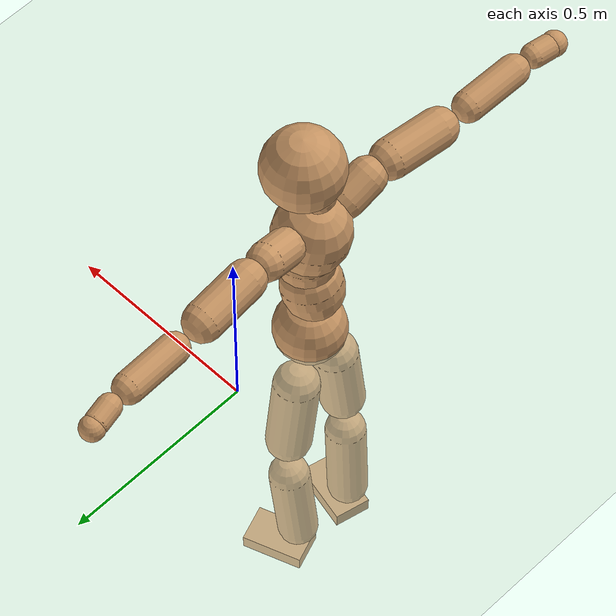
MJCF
<mujoco model="humanoid">
  <compiler coordinate="local" angle="radian"/>
  <default>
    <joint damping="0.0" armature="0.01" stiffness="0.0" limited="true"/>
    <geom conaffinity="1" condim="3" contype="7" margin="0.001" rgba="0.8 0.6 .4 1"/>
  </default>
  <asset>
    <texture type="skybox" builtin="gradient" rgb1=".4 .5 .6" rgb2="0 0 0" width="100" height="100"/>
    <texture builtin="flat" height="1278" mark="cross" markrgb="1 1 1" name="texgeom" random="0.01" rgb1="0.8 0.6 0.4" rgb2="0.8 0.6 0.4" type="cube" width="127"/>
    <texture builtin="checker" height="100" name="texplane" rgb1="0 0 0" rgb2="0.8 0.8 0.8" type="2d" width="100"/>
    <material name="MatPlane" reflectance="0.5" shininess="1" specular="1" texrepeat="60 60" texture="texplane"/>
    <material name="geom" texture="texgeom" texuniform="true"/>
  </asset>
  <worldbody>
    <light cutoff="100" diffuse="1 1 1" dir="-0 0 -1.3" directional="true" exponent="1" pos="0 0 1.3" specular=".1 .1 .1"/>
    <geom conaffinity="1" condim="3" name="floor" pos="0 0 0" rgba="0.8 0.9 0.8 1" size="100 100 .2" type="plane" material="MatPlane"/>
    <body name="Pelvis" pos="0.0006 -0.2386 0.0166">
      <freejoint name="Pelvis"/>
      <geom type="sphere" contype="1" conaffinity="1" density="500" size="0.0907" pos="0.0000 0.0000 0.0000" name="Pelvis"/>
      <body name="L_Hip" pos="-0.0203 0.0557 -0.0802">
        <joint name="L_Hip_x" type="hinge" pos="0 0 0" axis="1 0 0" stiffness="800" damping="80" armature="0.02" range="-180.0000 180.0000"/>
        <joint name="L_Hip_y" type="hinge" pos="0 0 0" axis="0 1 0" stiffness="800" damping="80" armature="0.02" range="-180.0000 180.0000"/>
        <joint name="L_Hip_z" type="hinge" pos="0 0 0" axis="0 0 1" stiffness="800" damping="80" armature="0.02" range="-180.0000 180.0000"/>
        <geom type="capsule" contype="1" conaffinity="1" density="500" fromto="0.0012 0.0083 -0.0731 0.0048 0.0330 -0.2925" size="0.0575" name="L_Hip"/>
        <body name="L_Knee" pos="0.006 0.0413 -0.3656">
          <joint name="L_Knee_x" type="hinge" pos="0 0 0" axis="1 0 0" stiffness="800" damping="80" armature="0.02" range="-180.0000 180.0000"/>
          <joint name="L_Knee_y" type="hinge" pos="0 0 0" axis="0 1 0" stiffness="800" damping="80" armature="0.02" range="-180.0000 180.0000"/>
          <joint name="L_Knee_z" type="hinge" pos="0 0 0" axis="0 0 1" stiffness="800" damping="80" armature="0.02" range="-180.0000 180.0000"/>
          <geom type="capsule" contype="1" conaffinity="1" density="500" fromto="-0.0071 -0.0025 -0.0764 -0.0285 -0.0099 -0.3056" size="0.0514" name="L_Knee"/>
          <body name="L_Ankle" pos="-0.0357 -0.0124 -0.382">
            <joint name="L_Ankle_x" type="hinge" pos="0 0 0" axis="1 0 0" stiffness="800" damping="80" armature="0.02" range="-180.0000 180.0000"/>
            <joint name="L_Ankle_y" type="hinge" pos="0 0 0" axis="0 1 0" stiffness="800" damping="80" armature="0.02" range="-180.0000 180.0000"/>
            <joint name="L_Ankle_z" type="hinge" pos="0 0 0" axis="0 0 1" stiffness="800" damping="80" armature="0.02" range="-180.0000 180.0000"/>
            <geom type="box" contype="1" conaffinity="1" density="500" pos="0.0559 0.0199 -0.0274" size="0.0788 0.0488 0.0203" quat="0.9854 0.0000 0.0000 0.1703" name="L_Ankle"/>
            <body name="L_Toe" pos="0.1118 0.0398 -0.0549">
              <joint name="L_Toe_x" type="hinge" pos="0 0 0" axis="1 0 0" stiffness="500" damping="50" armature="0.02" range="-180.0000 180.0000"/>
              <joint name="L_Toe_y" type="hinge" pos="0 0 0" axis="0 1 0" stiffness="500" damping="50" armature="0.02" range="-180.0000 180.0000"/>
              <joint name="L_Toe_z" type="hinge" pos="0 0 0" axis="0 0 1" stiffness="500" damping="50" armature="0.02" range="-180.0000 180.0000"/>
              <geom type="box" contype="1" conaffinity="1" density="500" pos="0.0000 0.0000 0.0277" size="0.001 0.0023 0.001" quat="0.9845 0.0000 0.0000 0.1752" name="L_Toe"/>
            </body>
          </body>
        </body>
      </body>
      <body name="R_Hip" pos="-0.0169 -0.058 -0.0881">
        <joint name="R_Hip_x" type="hinge" pos="0 0 0" axis="1 0 0" stiffness="800" damping="80" armature="0.02" range="-180.0000 180.0000"/>
        <joint name="R_Hip_y" type="hinge" pos="0 0 0" axis="0 1 0" stiffness="800" damping="80" armature="0.02" range="-180.0000 180.0000"/>
        <joint name="R_Hip_z" type="hinge" pos="0 0 0" axis="0 0 1" stiffness="800" damping="80" armature="0.02" range="-180.0000 180.0000"/>
        <geom type="capsule" contype="1" conaffinity="1" density="500" fromto="-0.0008 -0.0084 -0.0721 -0.0034 -0.0334 -0.2884" size="0.0572" name="R_Hip"/>
        <body name="R_Knee" pos="-0.0042 -0.0418 -0.3605">
          <joint name="R_Knee_x" type="hinge" pos="0 0 0" axis="1 0 0" stiffness="800" damping="80" armature="0.02" range="-180.0000 180.0000"/>
          <joint name="R_Knee_y" type="hinge" pos="0 0 0" axis="0 1 0" stiffness="800" damping="80" armature="0.02" range="-180.0000 180.0000"/>
          <joint name="R_Knee_z" type="hinge" pos="0 0 0" axis="0 0 1" stiffness="800" damping="80" armature="0.02" range="-180.0000 180.0000"/>
          <geom type="capsule" contype="1" conaffinity="1" density="500" fromto="-0.0065 0.0034 -0.0752 -0.0262 0.0136 -0.3009" size="0.052" name="R_Knee"/>
          <body name="R_Ankle" pos="-0.0327 0.0171 -0.3761">
            <joint name="R_Ankle_x" type="hinge" pos="0 0 0" axis="1 0 0" stiffness="800" damping="80" armature="0.02" range="-180.0000 180.0000"/>
            <joint name="R_Ankle_y" type="hinge" pos="0 0 0" axis="0 1 0" stiffness="800" damping="80" armature="0.02" range="-180.0000 180.0000"/>
            <joint name="R_Ankle_z" type="hinge" pos="0 0 0" axis="0 0 1" stiffness="800" damping="80" armature="0.02" range="-180.0000 180.0000"/>
            <geom type="box" contype="1" conaffinity="1" density="500" pos="0.0597 -0.0141 -0.0289" size="0.0831 0.0478 0.0207" quat="0.9933 0.0000 0.0000 -0.1156" name="R_Ankle"/>
            <body name="R_Toe" pos="0.1195 -0.0282 -0.0578">
              <joint name="R_Toe_x" type="hinge" pos="0 0 0" axis="1 0 0" stiffness="500" damping="50" armature="0.02" range="-180.0000 180.0000"/>
              <joint name="R_Toe_y" type="hinge" pos="0 0 0" axis="0 1 0" stiffness="500" damping="50" armature="0.02" range="-180.0000 180.0000"/>
              <joint name="R_Toe_z" type="hinge" pos="0 0 0" axis="0 0 1" stiffness="500" damping="50" armature="0.02" range="-180.0000 180.0000"/>
              <geom type="box" contype="1" conaffinity="1" density="500" pos="0.0000 0.0000 0.0302" size="0.001 0.0023 0.0011" quat="0.9944 0.0000 0.0000 -0.1060" name="R_Toe"/>
            </body>
          </body>
        </body>
      </body>
      <body name="Torso" pos="-0.0286 0.0038 0.1207">
        <joint name="Torso_x" type="hinge" pos="0 0 0" axis="1 0 0" stiffness="1000" damping="100" armature="0.02" range="-180.0000 180.0000"/>
        <joint name="Torso_y" type="hinge" pos="0 0 0" axis="0 1 0" stiffness="1000" damping="100" armature="0.02" range="-180.0000 180.0000"/>
        <joint name="Torso_z" type="hinge" pos="0 0 0" axis="0 0 1" stiffness="1000" damping="100" armature="0.02" range="-180.0000 180.0000"/>
        <geom type="capsule" contype="1" conaffinity="1" density="500" fromto="0.0188 0.0027 0.0828 0.0126 0.0018 0.0552" size="0.0754" name="Torso"/>
        <body name="Spine" pos="0.0314 0.0045 0.138">
          <joint name="Spine_x" type="hinge" pos="0 0 0" axis="1 0 0" stiffness="1000" damping="100" armature="0.02" range="-180.0000 180.0000"/>
          <joint name="Spine_y" type="hinge" pos="0 0 0" axis="0 1 0" stiffness="1000" damping="100" armature="0.02" range="-180.0000 180.0000"/>
          <joint name="Spine_z" type="hinge" pos="0 0 0" axis="0 0 1" stiffness="1000" damping="100" armature="0.02" range="-180.0000 180.0000"/>
          <geom type="capsule" contype="1" conaffinity="1" density="500" fromto="0.0020 -0.0015 0.0332 0.0013 -0.0010 0.0221" size="0.0735" name="Spine"/>
          <body name="Chest" pos="0.0034 -0.0026 0.0553">
            <joint name="Chest_x" type="hinge" pos="0 0 0" axis="1 0 0" stiffness="1000" damping="100" armature="0.02" range="-180.0000 180.0000"/>
            <joint name="Chest_y" type="hinge" pos="0 0 0" axis="0 1 0" stiffness="1000" damping="100" armature="0.02" range="-180.0000 180.0000"/>
            <joint name="Chest_z" type="hinge" pos="0 0 0" axis="0 0 1" stiffness="1000" damping="100" armature="0.02" range="-180.0000 180.0000"/>
            <geom type="capsule" contype="1" conaffinity="1" density="500" fromto="-0.0158 -0.0053 0.0818 -0.0105 -0.0035 0.0545" size="0.0934" name="Chest"/>
            <body name="Neck" pos="-0.0354 -0.0129 0.1976">
              <joint name="Neck_x" type="hinge" pos="0 0 0" axis="1 0 0" stiffness="500" damping="50" armature="0.02" range="-180.0000 180.0000"/>
              <joint name="Neck_y" type="hinge" pos="0 0 0" axis="0 1 0" stiffness="500" damping="50" armature="0.02" range="-180.0000 180.0000"/>
              <joint name="Neck_z" type="hinge" pos="0 0 0" axis="0 0 1" stiffness="500" damping="50" armature="0.02" range="-180.0000 180.0000"/>
              <geom type="capsule" contype="1" conaffinity="1" density="500" fromto="0.0096 0.0017 0.0173 0.0383 0.0069 0.0691" size="0.0427" name="Neck"/>
              <body name="Head" pos="0.0479 0.0086 0.0864">
                <joint name="Head_x" type="hinge" pos="0 0 0" axis="1 0 0" stiffness="500" damping="50" armature="0.02" range="-180.0000 180.0000"/>
                <joint name="Head_y" type="hinge" pos="0 0 0" axis="0 1 0" stiffness="500" damping="50" armature="0.02" range="-180.0000 180.0000"/>
                <joint name="Head_z" type="hinge" pos="0 0 0" axis="0 0 1" stiffness="500" damping="50" armature="0.02" range="-180.0000 180.0000"/>
                <geom type="sphere" contype="1" conaffinity="1" density="500" size="0.0999" pos="0.0000 0.0000 0.0000" name="Head"/>
              </body>
            </body>
            <body name="L_Thorax" pos="-0.0201 0.0661 0.1056">
              <joint name="L_Thorax_x" type="hinge" pos="0 0 0" axis="1 0 0" stiffness="500" damping="50" armature="0.02" range="-180.0000 180.0000"/>
              <joint name="L_Thorax_y" type="hinge" pos="0 0 0" axis="0 1 0" stiffness="500" damping="50" armature="0.02" range="-180.0000 180.0000"/>
              <joint name="L_Thorax_z" type="hinge" pos="0 0 0" axis="0 0 1" stiffness="500" damping="50" armature="0.02" range="-180.0000 180.0000"/>
              <geom type="capsule" contype="1" conaffinity="1" density="500" fromto="-0.0032 0.0226 0.0083 -0.0130 0.0905 0.0331" size="0.0471" name="L_Thorax"/>
              <body name="L_Shoulder" pos="-0.0162 0.1131 0.0413">
                <joint name="L_Shoulder_x" type="hinge" pos="0 0 0" axis="1 0 0" stiffness="500" damping="50" armature="0.02" range="-720.0000 720.0000"/>
                <joint name="L_Shoulder_y" type="hinge" pos="0 0 0" axis="0 1 0" stiffness="500" damping="50" armature="0.02" range="-720.0000 720.0000"/>
                <joint name="L_Shoulder_z" type="hinge" pos="0 0 0" axis="0 0 1" stiffness="500" damping="50" armature="0.02" range="-720.0000 720.0000"/>
                <geom type="capsule" contype="1" conaffinity="1" density="500" fromto="-0.0028 0.0462 -0.0022 -0.0114 0.1849 -0.0089" size="0.0486" name="L_Shoulder"/>
                <body name="L_Elbow" pos="-0.0142 0.2311 -0.0111">
                  <joint name="L_Elbow_x" type="hinge" pos="0 0 0" axis="1 0 0" stiffness="500" damping="50" armature="0.02" range="-720.0000 720.0000"/>
                  <joint name="L_Elbow_y" type="hinge" pos="0 0 0" axis="0 1 0" stiffness="500" damping="50" armature="0.02" range="-720.0000 720.0000"/>
                  <joint name="L_Elbow_z" type="hinge" pos="0 0 0" axis="0 0 1" stiffness="500" damping="50" armature="0.02" range="-720.0000 720.0000"/>
                  <geom type="capsule" contype="1" conaffinity="1" density="500" fromto="-0.0021 0.0464 0.0016 -0.0084 0.1856 0.0064" size="0.0381" name="L_Elbow"/>
                  <body name="L_Wrist" pos="-0.0105 0.232 0.008">
                    <joint name="L_Wrist_x" type="hinge" pos="0 0 0" axis="1 0 0" stiffness="300" damping="30" armature="0.02" range="-180.0000 180.0000"/>
                    <joint name="L_Wrist_y" type="hinge" pos="0 0 0" axis="0 1 0" stiffness="300" damping="30" armature="0.02" range="-180.0000 180.0000"/>
                    <joint name="L_Wrist_z" type="hinge" pos="0 0 0" axis="0 0 1" stiffness="300" damping="30" armature="0.02" range="-180.0000 180.0000"/>
                    <geom type="capsule" contype="1" conaffinity="1" density="500" fromto="-0.0026 0.0149 -0.0018 -0.0106 0.0597 -0.0073" size="0.0298" name="L_Wrist"/>
                    <body name="L_Hand" pos="-0.0132 0.0746 -0.0091">
                      <joint name="L_Hand_x" type="hinge" pos="0 0 0" axis="1 0 0" stiffness="300" damping="30" armature="0.02" range="-180.0000 180.0000"/>
                      <joint name="L_Hand_y" type="hinge" pos="0 0 0" axis="0 1 0" stiffness="300" damping="30" armature="0.02" range="-180.0000 180.0000"/>
                      <joint name="L_Hand_z" type="hinge" pos="0 0 0" axis="0 0 1" stiffness="300" damping="30" armature="0.02" range="-180.0000 180.0000"/>
                      <geom type="sphere" contype="1" conaffinity="1" density="500" size="0.0308" pos="0.0000 0.0000 0.0000" name="L_Hand"/>
                    </body>
                  </body>
                </body>
              </body>
            </body>
            <body name="R_Thorax" pos="-0.0233 -0.0796 0.1058">
              <joint name="R_Thorax_x" type="hinge" pos="0 0 0" axis="1 0 0" stiffness="500" damping="50" armature="0.02" range="-180.0000 180.0000"/>
              <joint name="R_Thorax_y" type="hinge" pos="0 0 0" axis="0 1 0" stiffness="500" damping="50" armature="0.02" range="-180.0000 180.0000"/>
              <joint name="R_Thorax_z" type="hinge" pos="0 0 0" axis="0 0 1" stiffness="500" damping="50" armature="0.02" range="-180.0000 180.0000"/>
              <geom type="capsule" contype="1" conaffinity="1" density="500" fromto="-0.0013 -0.0212 0.0085 -0.0054 -0.0849 0.0341" size="0.0478" name="R_Thorax"/>
              <body name="R_Shoulder" pos="-0.0067 -0.1061 0.0426">
                <joint name="R_Shoulder_x" type="hinge" pos="0 0 0" axis="1 0 0" stiffness="500" damping="50" armature="0.02" range="-720.0000 720.0000"/>
                <joint name="R_Shoulder_y" type="hinge" pos="0 0 0" axis="0 1 0" stiffness="500" damping="50" armature="0.02" range="-720.0000 720.0000"/>
                <joint name="R_Shoulder_z" type="hinge" pos="0 0 0" axis="0 0 1" stiffness="500" damping="50" armature="0.02" range="-720.0000 720.0000"/>
                <geom type="capsule" contype="1" conaffinity="1" density="500" fromto="-0.0043 -0.0469 -0.0022 -0.0173 -0.1878 -0.0087" size="0.0501" name="R_Shoulder"/>
                <body name="R_Elbow" pos="-0.0217 -0.2347 -0.0109">
                  <joint name="R_Elbow_x" type="hinge" pos="0 0 0" axis="1 0 0" stiffness="500" damping="50" armature="0.02" range="-720.0000 720.0000"/>
                  <joint name="R_Elbow_y" type="hinge" pos="0 0 0" axis="0 1 0" stiffness="500" damping="50" armature="0.02" range="-720.0000 720.0000"/>
                  <joint name="R_Elbow_z" type="hinge" pos="0 0 0" axis="0 0 1" stiffness="500" damping="50" armature="0.02" range="-720.0000 720.0000"/>
                  <geom type="capsule" contype="1" conaffinity="1" density="500" fromto="-0.0015 -0.0481 0.0013 -0.0060 -0.1925 0.0053" size="0.0395" name="R_Elbow"/>
                  <body name="R_Wrist" pos="-0.0075 -0.2406 0.0066">
                    <joint name="R_Wrist_x" type="hinge" pos="0 0 0" axis="1 0 0" stiffness="300" damping="30" armature="0.02" range="-180.0000 180.0000"/>
                    <joint name="R_Wrist_y" type="hinge" pos="0 0 0" axis="0 1 0" stiffness="300" damping="30" armature="0.02" range="-180.0000 180.0000"/>
                    <joint name="R_Wrist_z" type="hinge" pos="0 0 0" axis="0 0 1" stiffness="300" damping="30" armature="0.02" range="-180.0000 180.0000"/>
                    <geom type="capsule" contype="1" conaffinity="1" density="500" fromto="-0.0017 -0.0157 -0.0015 -0.0069 -0.0629 -0.0059" size="0.0312" name="R_Wrist"/>
                    <body name="R_Hand" pos="-0.0086 -0.0787 -0.0074">
                      <joint name="R_Hand_x" type="hinge" pos="0 0 0" axis="1 0 0" stiffness="300" damping="30" armature="0.02" range="-180.0000 180.0000"/>
                      <joint name="R_Hand_y" type="hinge" pos="0 0 0" axis="0 1 0" stiffness="300" damping="30" armature="0.02" range="-180.0000 180.0000"/>
                      <joint name="R_Hand_z" type="hinge" pos="0 0 0" axis="0 0 1" stiffness="300" damping="30" armature="0.02" range="-180.0000 180.0000"/>
                      <geom type="sphere" contype="1" conaffinity="1" density="500" size="0.0321" pos="0.0000 0.0000 0.0000" name="R_Hand"/>
                    </body>
                  </body>
                </body>
              </body>
            </body>
          </body>
        </body>
      </body>
    </body>
  </worldbody>
  <actuator>
    <motor name="L_Hip_x" joint="L_Hip_x" gear="500"/>
    <motor name="L_Hip_y" joint="L_Hip_y" gear="500"/>
    <motor name="L_Hip_z" joint="L_Hip_z" gear="500"/>
    <motor name="L_Knee_x" joint="L_Knee_x" gear="500"/>
    <motor name="L_Knee_y" joint="L_Knee_y" gear="500"/>
    <motor name="L_Knee_z" joint="L_Knee_z" gear="500"/>
    <motor name="L_Ankle_x" joint="L_Ankle_x" gear="500"/>
    <motor name="L_Ankle_y" joint="L_Ankle_y" gear="500"/>
    <motor name="L_Ankle_z" joint="L_Ankle_z" gear="500"/>
    <motor name="L_Toe_x" joint="L_Toe_x" gear="500"/>
    <motor name="L_Toe_y" joint="L_Toe_y" gear="500"/>
    <motor name="L_Toe_z" joint="L_Toe_z" gear="500"/>
    <motor name="R_Hip_x" joint="R_Hip_x" gear="500"/>
    <motor name="R_Hip_y" joint="R_Hip_y" gear="500"/>
    <motor name="R_Hip_z" joint="R_Hip_z" gear="500"/>
    <motor name="R_Knee_x" joint="R_Knee_x" gear="500"/>
    <motor name="R_Knee_y" joint="R_Knee_y" gear="500"/>
    <motor name="R_Knee_z" joint="R_Knee_z" gear="500"/>
    <motor name="R_Ankle_x" joint="R_Ankle_x" gear="500"/>
    <motor name="R_Ankle_y" joint="R_Ankle_y" gear="500"/>
    <motor name="R_Ankle_z" joint="R_Ankle_z" gear="500"/>
    <motor name="R_Toe_x" joint="R_Toe_x" gear="500"/>
    <motor name="R_Toe_y" joint="R_Toe_y" gear="500"/>
    <motor name="R_Toe_z" joint="R_Toe_z" gear="500"/>
    <motor name="Torso_x" joint="Torso_x" gear="500"/>
    <motor name="Torso_y" joint="Torso_y" gear="500"/>
    <motor name="Torso_z" joint="Torso_z" gear="500"/>
    <motor name="Spine_x" joint="Spine_x" gear="500"/>
    <motor name="Spine_y" joint="Spine_y" gear="500"/>
    <motor name="Spine_z" joint="Spine_z" gear="500"/>
    <motor name="Chest_x" joint="Chest_x" gear="500"/>
    <motor name="Chest_y" joint="Chest_y" gear="500"/>
    <motor name="Chest_z" joint="Chest_z" gear="500"/>
    <motor name="Neck_x" joint="Neck_x" gear="500"/>
    <motor name="Neck_y" joint="Neck_y" gear="500"/>
    <motor name="Neck_z" joint="Neck_z" gear="500"/>
    <motor name="Head_x" joint="Head_x" gear="500"/>
    <motor name="Head_y" joint="Head_y" gear="500"/>
    <motor name="Head_z" joint="Head_z" gear="500"/>
    <motor name="L_Thorax_x" joint="L_Thorax_x" gear="500"/>
    <motor name="L_Thorax_y" joint="L_Thorax_y" gear="500"/>
    <motor name="L_Thorax_z" joint="L_Thorax_z" gear="500"/>
    <motor name="L_Shoulder_x" joint="L_Shoulder_x" gear="500"/>
    <motor name="L_Shoulder_y" joint="L_Shoulder_y" gear="500"/>
    <motor name="L_Shoulder_z" joint="L_Shoulder_z" gear="500"/>
    <motor name="L_Elbow_x" joint="L_Elbow_x" gear="500"/>
    <motor name="L_Elbow_y" joint="L_Elbow_y" gear="500"/>
    <motor name="L_Elbow_z" joint="L_Elbow_z" gear="500"/>
    <motor name="L_Wrist_x" joint="L_Wrist_x" gear="500"/>
    <motor name="L_Wrist_y" joint="L_Wrist_y" gear="500"/>
    <motor name="L_Wrist_z" joint="L_Wrist_z" gear="500"/>
    <motor name="L_Hand_x" joint="L_Hand_x" gear="500"/>
    <motor name="L_Hand_y" joint="L_Hand_y" gear="500"/>
    <motor name="L_Hand_z" joint="L_Hand_z" gear="500"/>
    <motor name="R_Thorax_x" joint="R_Thorax_x" gear="500"/>
    <motor name="R_Thorax_y" joint="R_Thorax_y" gear="500"/>
    <motor name="R_Thorax_z" joint="R_Thorax_z" gear="500"/>
    <motor name="R_Shoulder_x" joint="R_Shoulder_x" gear="500"/>
    <motor name="R_Shoulder_y" joint="R_Shoulder_y" gear="500"/>
    <motor name="R_Shoulder_z" joint="R_Shoulder_z" gear="500"/>
    <motor name="R_Elbow_x" joint="R_Elbow_x" gear="500"/>
    <motor name="R_Elbow_y" joint="R_Elbow_y" gear="500"/>
    <motor name="R_Elbow_z" joint="R_Elbow_z" gear="500"/>
    <motor name="R_Wrist_x" joint="R_Wrist_x" gear="500"/>
    <motor name="R_Wrist_y" joint="R_Wrist_y" gear="500"/>
    <motor name="R_Wrist_z" joint="R_Wrist_z" gear="500"/>
    <motor name="R_Hand_x" joint="R_Hand_x" gear="500"/>
    <motor name="R_Hand_y" joint="R_Hand_y" gear="500"/>
    <motor name="R_Hand_z" joint="R_Hand_z" gear="500"/>
  </actuator>
  <contact>
    <exclude body1="Torso" body2="Chest"/>
    <exclude body1="Head" body2="Chest"/>
    <exclude body1="R_Knee" body2="R_Toe"/>
    <exclude body1="R_Knee" body2="L_Ankle"/>
    <exclude body1="R_Knee" body2="L_Toe"/>
    <exclude body1="L_Knee" body2="L_Toe"/>
    <exclude body1="L_Knee" body2="R_Ankle"/>
    <exclude body1="L_Knee" body2="R_Toe"/>
    <exclude body1="L_Shoulder" body2="Chest"/>
    <exclude body1="R_Shoulder" body2="Chest"/>
  </contact>
  <sensor/>
  <size njmax="700" nconmax="700"/>
</mujoco>
